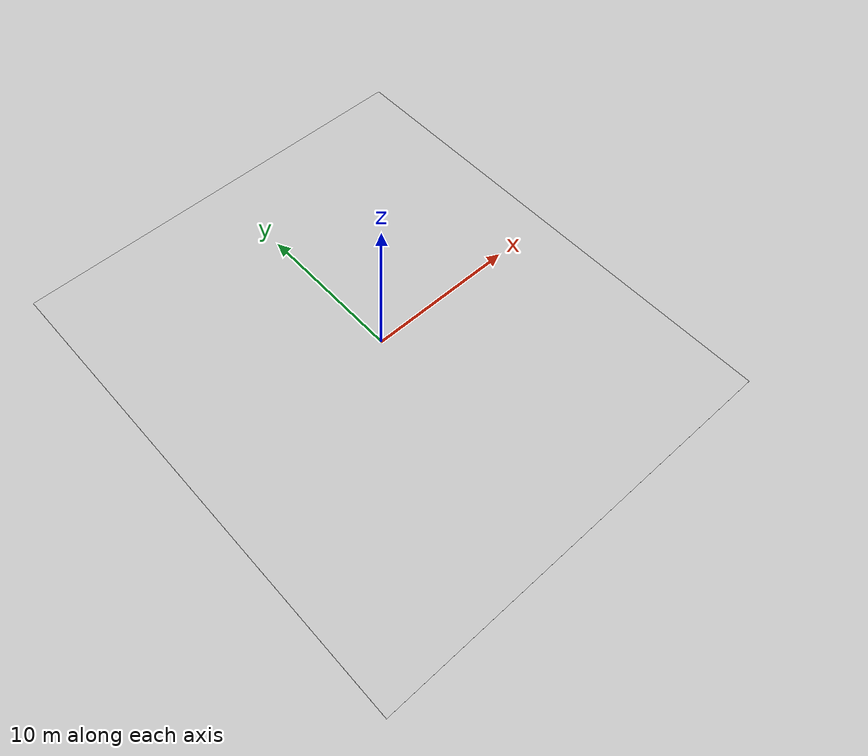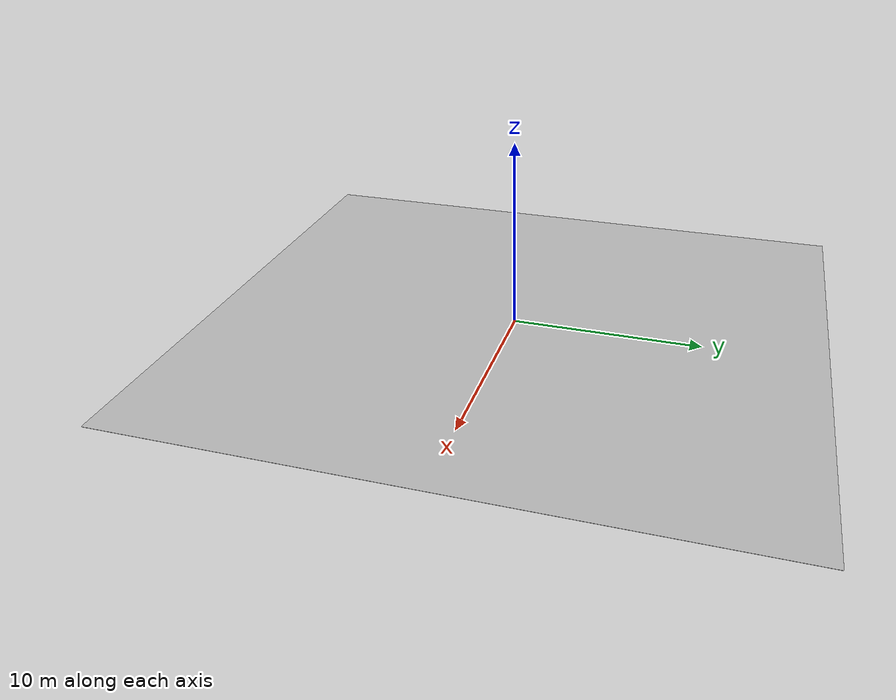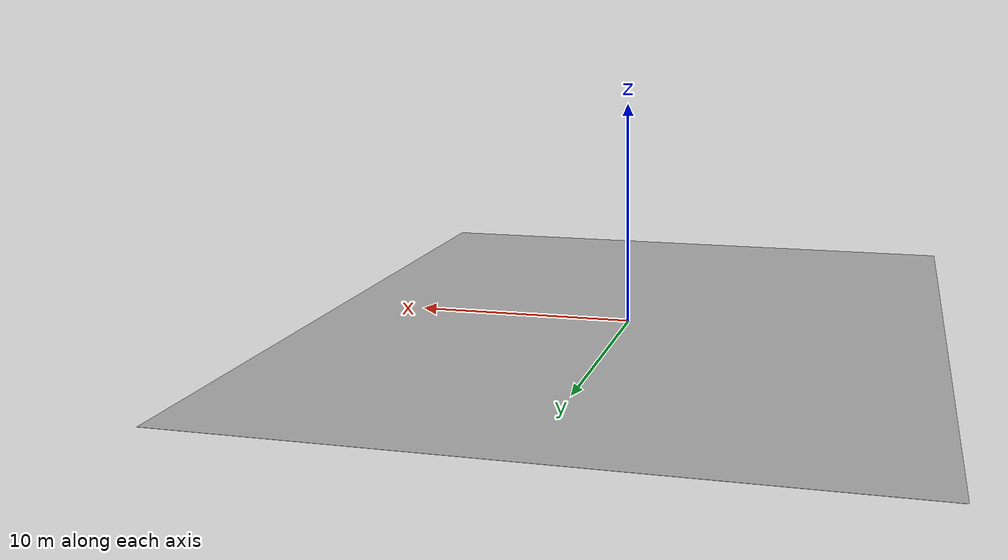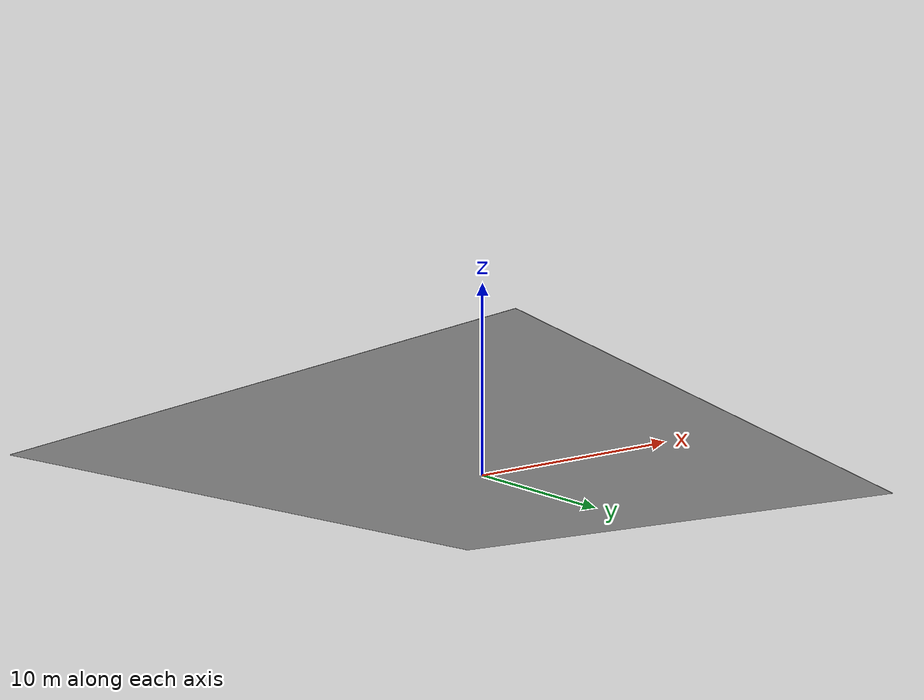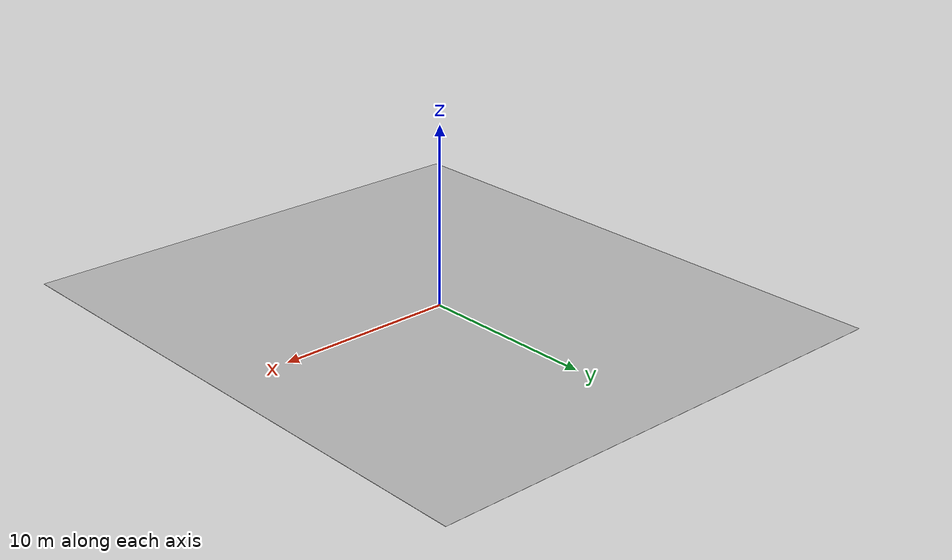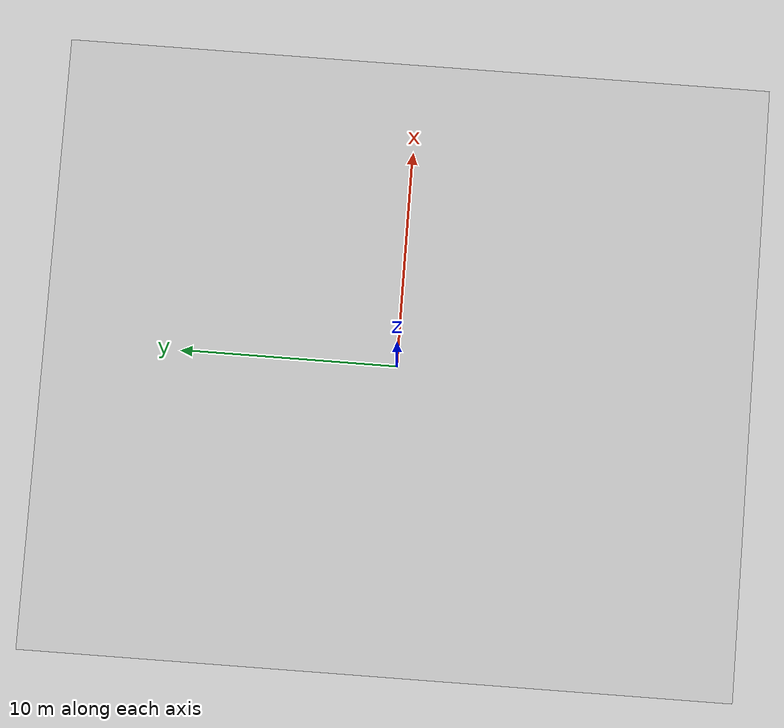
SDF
<?xml version="1.0"?>
<sdf version="1.5">
  <model name="ground">
    <static>1</static>
    <link name="ground">
      <collision name="ground_coll">
	<geometry>
	  <box>
	    <size>28.36 32.64 .01</size>
	  </box>
	</geometry>
	<surface>
	  <contact>
	    <ode/>
	  </contact>
	</surface>
      </collision>
      <visual name="ground_vis">
	<geometry>
	  <box>
	    <size>28.36 32.64 .01</size>
	  </box>
	</geometry>
	<material>
	  <script>
	    <uri>model://ground/materials/car_test_map.material</uri>
	    <name>car_test_map</name>
	  </script>
	</material>
      </visual>
    </link>
  </model>
</sdf>
